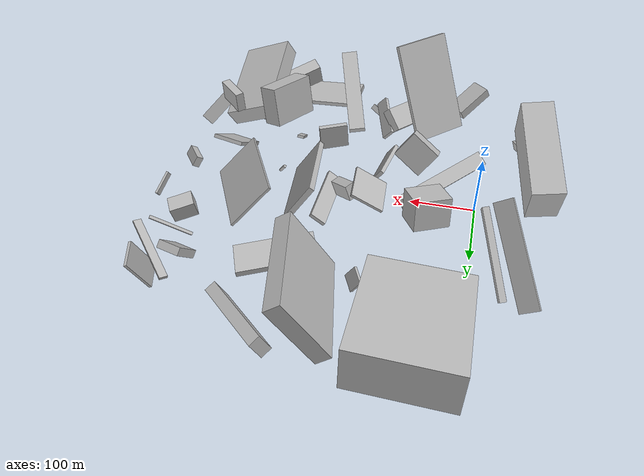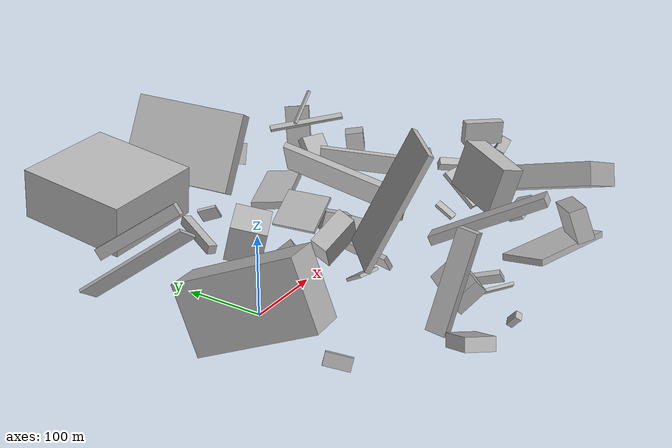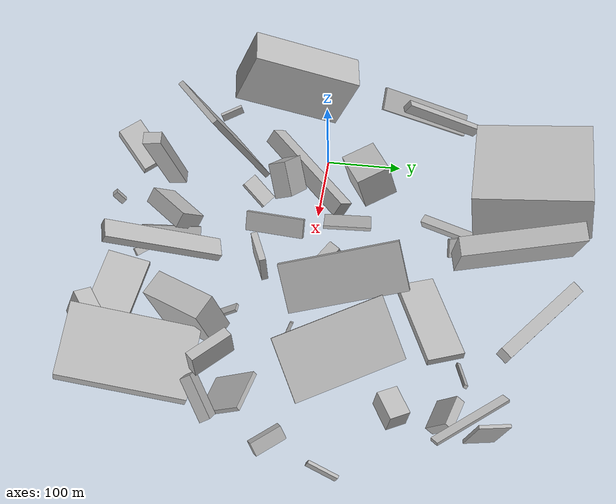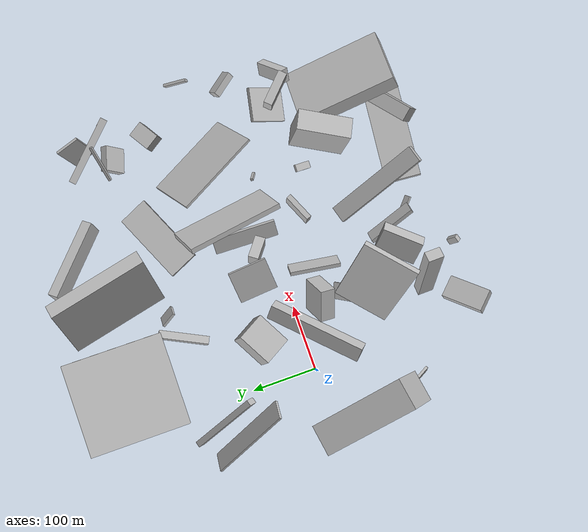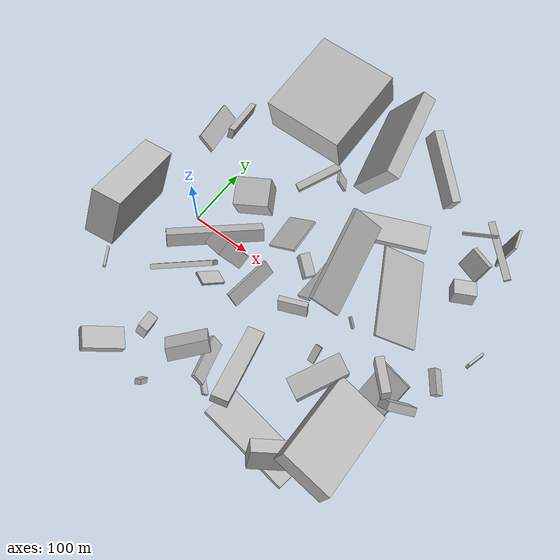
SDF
<sdf version="1.6">
 <world name="default">
  <scene>
   <sky><clouds><speed>12</speed></clouds></sky>
   <ambient>0.4 0.4 0.4 1</ambient>
   <background>0.7 0.7 0.7 1</background>
   <shadows>1</shadows>
  </scene>
  <gravity>0 0 -9.8066</gravity>
  <magnetic_field>6e-06 2.3e-05 -4.2e-05</magnetic_field>
  <physics default="0" name="default_physics" type="ode">
   <ode>
    <solver>
     <type>quick</type>
     <iters>10</iters>
     <sor>1.0</sor>
     <use_dynamic_moi_rescaling>0</use_dynamic_moi_rescaling>
    </solver>
    <constraints>
     <cfm>0</cfm>
     <erp>0.2</erp>
     <contact_max_correcting_vel>100</contact_max_correcting_vel>
     <contact_surface_layer>0.001</contact_surface_layer>
    </constraints>
   </ode>
   <max_step_size>0.004</max_step_size>
   <real_time_factor>1</real_time_factor>
   <real_time_update_rate>250</real_time_update_rate>
  </physics>
  <light name="sun" type="directional">
   <pose>0 0 10 0 0 0</pose>
   <diffuse>0.8 0.8 0.8 1</diffuse>
   <specular>0.2 0.2 0.2 1</specular>
   <attenuation>
    <range>1000</range>
    <constant>0.9</constant>
    <linear>0.01</linear>
    <quadratic>0.001</quadratic>
   </attenuation>
   <direction>-0.5 0.1 -0.9</direction>
  </light>
  <model name="building_1">
   <static>0</static>
   <pose>-60.25235133368727 -50.20936138154008 71.71416998078236 1.45549197673673 -0.401541866076691 -1.3689805716359864</pose>
   <link name="link">
    <gravity>0</gravity>
    <pose>0 0 24.0 0 0 0</pose>
    <collision name="collision"><geometry><box><size>150 85 48</size></box></geometry></collision>
    <visual name="visual">
     <cast_shadows>0</cast_shadows>
     <geometry><box><size>150 85 48</size></box></geometry>
     <material>
      <script>
       <uri>model://HANNAS_wall/materials/scripts</uri>
       <uri>model://HANNAS_wall/materials/textures</uri>
       <name>vrc/HANNAS_wall</name>
      </script>
     </material>
    </visual>
   </link>
  </model>
  <model name="building_2">
   <static>0</static>
   <pose>434.0972445987231 -177.85057770969897 52.88606769500816 1.1880320403641156 -0.2572028035636012 -1.511340583130116</pose>
   <link name="link">
    <gravity>0</gravity>
    <pose>0 0 42.5 0 0 0</pose>
    <collision name="collision"><geometry><box><size>150 30 85</size></box></geometry></collision>
    <visual name="visual">
     <cast_shadows>0</cast_shadows>
     <geometry><box><size>150 30 85</size></box></geometry>
     <material>
      <script>
       <uri>model://HANNAS_wall/materials/scripts</uri>
       <uri>model://HANNAS_wall/materials/textures</uri>
       <name>vrc/HANNAS_wall</name>
      </script>
     </material>
    </visual>
   </link>
  </model>
  <model name="building_3">
   <static>0</static>
   <pose>301.1779980425065 -230.11643713288035 19.112194760271382 0.16891549188088836 -0.12971441848914878 3.023324966232064</pose>
   <link name="link">
    <gravity>0</gravity>
    <pose>0 0 4.0 0 0 0</pose>
    <collision name="collision"><geometry><box><size>150 54 8</size></box></geometry></collision>
    <visual name="visual">
     <cast_shadows>0</cast_shadows>
     <geometry><box><size>150 54 8</size></box></geometry>
     <material>
      <script>
       <uri>model://HANNAS_wall/materials/scripts</uri>
       <uri>model://HANNAS_wall/materials/textures</uri>
       <name>vrc/HANNAS_wall</name>
      </script>
     </material>
    </visual>
   </link>
  </model>
  <model name="building_4">
   <static>0</static>
   <pose>111.36813093241996 -32.8849343449691 50.72258154397326 0.4543028214733065 -0.5648923138002895 -0.31093363963004533</pose>
   <link name="link">
    <gravity>0</gravity>
    <pose>0 0 22.5 0 0 0</pose>
    <collision name="collision"><geometry><box><size>50 23 45</size></box></geometry></collision>
    <visual name="visual">
     <cast_shadows>0</cast_shadows>
     <geometry><box><size>50 23 45</size></box></geometry>
     <material>
      <script>
       <uri>model://HANNAS_wall/materials/scripts</uri>
       <uri>model://HANNAS_wall/materials/textures</uri>
       <name>vrc/HANNAS_wall</name>
      </script>
     </material>
    </visual>
   </link>
  </model>
  <model name="building_5">
   <static>0</static>
   <pose>212.2674574630388 184.2484656451919 80.5213434235328 -1.4306352503838542 -1.0500172286552973 0.10232424264633498</pose>
   <link name="link">
    <gravity>0</gravity>
    <pose>0 0 75.0 0 0 0</pose>
    <collision name="collision"><geometry><box><size>106 23 150</size></box></geometry></collision>
    <visual name="visual">
     <cast_shadows>0</cast_shadows>
     <geometry><box><size>106 23 150</size></box></geometry>
     <material>
      <script>
       <uri>model://HANNAS_wall/materials/scripts</uri>
       <uri>model://HANNAS_wall/materials/textures</uri>
       <name>vrc/HANNAS_wall</name>
      </script>
     </material>
    </visual>
   </link>
  </model>
  <model name="building_6">
   <static>0</static>
   <pose>173.5736541697972 -197.5148070005549 8.0180633052213 1.4192571474985403 -0.7654240277411027 0.9660755953076232</pose>
   <link name="link">
    <gravity>0</gravity>
    <pose>0 0 19.0 0 0 0</pose>
    <collision name="collision"><geometry><box><size>4 10 38</size></box></geometry></collision>
    <visual name="visual">
     <cast_shadows>0</cast_shadows>
     <geometry><box><size>4 10 38</size></box></geometry>
     <material>
      <script>
       <uri>model://HANNAS_wall/materials/scripts</uri>
       <uri>model://HANNAS_wall/materials/textures</uri>
       <name>vrc/HANNAS_wall</name>
      </script>
     </material>
    </visual>
   </link>
  </model>
  <model name="building_7">
   <static>0</static>
   <pose>326.09803554454794 -113.85011745310095 47.62589438951939 0.23006087961401092 -0.139760161153987 1.0841853907213765</pose>
   <link name="link">
    <gravity>0</gravity>
    <pose>0 0 31.5 0 0 0</pose>
    <collision name="collision"><geometry><box><size>81 32 63</size></box></geometry></collision>
    <visual name="visual">
     <cast_shadows>0</cast_shadows>
     <geometry><box><size>81 32 63</size></box></geometry>
     <material>
      <script>
       <uri>model://HANNAS_wall/materials/scripts</uri>
       <uri>model://HANNAS_wall/materials/textures</uri>
       <name>vrc/HANNAS_wall</name>
      </script>
     </material>
    </visual>
   </link>
  </model>
  <model name="building_8">
   <static>0</static>
   <pose>47.98399160304412 -12.6843895468881 28.930466769528806 0.21380292222519115 -0.949830974680291 2.1759728856034832</pose>
   <link name="link">
    <gravity>0</gravity>
    <pose>0 0 11.5 0 0 0</pose>
    <collision name="collision"><geometry><box><size>20 150 23</size></box></geometry></collision>
    <visual name="visual">
     <cast_shadows>0</cast_shadows>
     <geometry><box><size>20 150 23</size></box></geometry>
     <material>
      <script>
       <uri>model://HANNAS_wall/materials/scripts</uri>
       <uri>model://HANNAS_wall/materials/textures</uri>
       <name>vrc/HANNAS_wall</name>
      </script>
     </material>
    </visual>
   </link>
  </model>
  <model name="building_9">
   <static>0</static>
   <pose>267.0039295312712 159.85796291650206 11.29077426091049 0.09414602967537448 -0.03667928146051552 -2.724255453443847</pose>
   <link name="link">
    <gravity>0</gravity>
    <pose>0 0 5.0 0 0 0</pose>
    <collision name="collision"><geometry><box><size>115 47 10</size></box></geometry></collision>
    <visual name="visual">
     <cast_shadows>0</cast_shadows>
     <geometry><box><size>115 47 10</size></box></geometry>
     <material>
      <script>
       <uri>model://HANNAS_wall/materials/scripts</uri>
       <uri>model://HANNAS_wall/materials/textures</uri>
       <name>vrc/HANNAS_wall</name>
      </script>
     </material>
    </visual>
   </link>
  </model>
  <model name="building_10">
   <static>0</static>
   <pose>408.797063193401 137.26208192375648 44.39815707394846 -0.8321508004424504 1.389799380436899 -1.8486092916430539</pose>
   <link name="link">
    <gravity>0</gravity>
    <pose>0 0 12.5 0 0 0</pose>
    <collision name="collision"><geometry><box><size>26 35 25</size></box></geometry></collision>
    <visual name="visual">
     <cast_shadows>0</cast_shadows>
     <geometry><box><size>26 35 25</size></box></geometry>
     <material>
      <script>
       <uri>model://HANNAS_wall/materials/scripts</uri>
       <uri>model://HANNAS_wall/materials/textures</uri>
       <name>vrc/HANNAS_wall</name>
      </script>
     </material>
    </visual>
   </link>
  </model>
  <model name="building_11">
   <static>0</static>
   <pose>425.3331881871866 252.02686717982115 34.39314090974973 1.051779652067661 -1.2325574570640483 0.7669210147089158</pose>
   <link name="link">
    <gravity>0</gravity>
    <pose>0 0 18.5 0 0 0</pose>
    <collision name="collision"><geometry><box><size>61 4 37</size></box></geometry></collision>
    <visual name="visual">
     <cast_shadows>0</cast_shadows>
     <geometry><box><size>61 4 37</size></box></geometry>
     <material>
      <script>
       <uri>model://HANNAS_wall/materials/scripts</uri>
       <uri>model://HANNAS_wall/materials/textures</uri>
       <name>vrc/HANNAS_wall</name>
      </script>
     </material>
    </visual>
   </link>
  </model>
  <model name="building_12">
   <static>0</static>
   <pose>264.62211525662815 -19.17401870293508 48.253189477022495 1.2692752325553798 0.6390135820166883 3.129280510843878</pose>
   <link name="link">
    <gravity>0</gravity>
    <pose>0 0 75.0 0 0 0</pose>
    <collision name="collision"><geometry><box><size>8 62 150</size></box></geometry></collision>
    <visual name="visual">
     <cast_shadows>0</cast_shadows>
     <geometry><box><size>8 62 150</size></box></geometry>
     <material>
      <script>
       <uri>model://HANNAS_wall/materials/scripts</uri>
       <uri>model://HANNAS_wall/materials/textures</uri>
       <name>vrc/HANNAS_wall</name>
      </script>
     </material>
    </visual>
   </link>
  </model>
  <model name="building_13">
   <static>0</static>
   <pose>128.4006439293614 208.0776029266575 13.957955126896053 2.1439211747090137 -1.324499835617328 -1.0220123324136363</pose>
   <link name="link">
    <gravity>0</gravity>
    <pose>0 0 38.5 0 0 0</pose>
    <collision name="collision"><geometry><box><size>12 12 77</size></box></geometry></collision>
    <visual name="visual">
     <cast_shadows>0</cast_shadows>
     <geometry><box><size>12 12 77</size></box></geometry>
     <material>
      <script>
       <uri>model://HANNAS_wall/materials/scripts</uri>
       <uri>model://HANNAS_wall/materials/textures</uri>
       <name>vrc/HANNAS_wall</name>
      </script>
     </material>
    </visual>
   </link>
  </model>
  <model name="building_14">
   <static>0</static>
   <pose>-59.34962735067617 126.8037397818394 54.004947693943514 0.7825148121884998 -0.6149332189189942 3.057386077477397</pose>
   <link name="link">
    <gravity>0</gravity>
    <pose>0 0 2.0 0 0 0</pose>
    <collision name="collision"><geometry><box><size>30 150 4</size></box></geometry></collision>
    <visual name="visual">
     <cast_shadows>0</cast_shadows>
     <geometry><box><size>30 150 4</size></box></geometry>
     <material>
      <script>
       <uri>model://HANNAS_wall/materials/scripts</uri>
       <uri>model://HANNAS_wall/materials/textures</uri>
       <name>vrc/HANNAS_wall</name>
      </script>
     </material>
    </visual>
   </link>
  </model>
  <model name="building_15">
   <static>0</static>
   <pose>410.17952918599156 -71.21752637139022 105.09610138390306 1.7565857033702699 -1.5251272263376188 -0.9526946140672307</pose>
   <link name="link">
    <gravity>0</gravity>
    <pose>0 0 6.5 0 0 0</pose>
    <collision name="collision"><geometry><box><size>30 52 13</size></box></geometry></collision>
    <visual name="visual">
     <cast_shadows>0</cast_shadows>
     <geometry><box><size>30 52 13</size></box></geometry>
     <material>
      <script>
       <uri>model://HANNAS_wall/materials/scripts</uri>
       <uri>model://HANNAS_wall/materials/textures</uri>
       <name>vrc/HANNAS_wall</name>
      </script>
     </material>
    </visual>
   </link>
  </model>
  <model name="building_16">
   <static>0</static>
   <pose>406.5981023929494 -60.42410430276972 22.144940723669006 -0.03218690842604898 -0.6180370106507622 1.3869227506890367</pose>
   <link name="link">
    <gravity>0</gravity>
    <pose>0 0 3.0 0 0 0</pose>
    <collision name="collision"><geometry><box><size>60 52 6</size></box></geometry></collision>
    <visual name="visual">
     <cast_shadows>0</cast_shadows>
     <geometry><box><size>60 52 6</size></box></geometry>
     <material>
      <script>
       <uri>model://HANNAS_wall/materials/scripts</uri>
       <uri>model://HANNAS_wall/materials/textures</uri>
       <name>vrc/HANNAS_wall</name>
      </script>
     </material>
    </visual>
   </link>
  </model>
  <model name="building_17">
   <static>0</static>
   <pose>117.02186728127737 -206.48218064077986 29.23629441644624 1.503152905711256 -0.8413070038830643 2.478820275684202</pose>
   <link name="link">
    <gravity>0</gravity>
    <pose>0 0 32.0 0 0 0</pose>
    <collision name="collision"><geometry><box><size>21 39 64</size></box></geometry></collision>
    <visual name="visual">
     <cast_shadows>0</cast_shadows>
     <geometry><box><size>21 39 64</size></box></geometry>
     <material>
      <script>
       <uri>model://HANNAS_wall/materials/scripts</uri>
       <uri>model://HANNAS_wall/materials/textures</uri>
       <name>vrc/HANNAS_wall</name>
      </script>
     </material>
    </visual>
   </link>
  </model>
  <model name="building_18">
   <static>0</static>
   <pose>70.050969016823 -91.85459297094643 70.10163776783475 0.016061829416721025 -0.4679636498496997 2.2887605476033688</pose>
   <link name="link">
    <gravity>0</gravity>
    <pose>0 0 75.0 0 0 0</pose>
    <collision name="collision"><geometry><box><size>7 83 150</size></box></geometry></collision>
    <visual name="visual">
     <cast_shadows>0</cast_shadows>
     <geometry><box><size>7 83 150</size></box></geometry>
     <material>
      <script>
       <uri>model://HANNAS_wall/materials/scripts</uri>
       <uri>model://HANNAS_wall/materials/textures</uri>
       <name>vrc/HANNAS_wall</name>
      </script>
     </material>
    </visual>
   </link>
  </model>
  <model name="building_19">
   <static>0</static>
   <pose>112.09749444744037 -265.0506946276114 18.38010394179487 1.161855005086686 -0.57935620434782 2.1363803137303385</pose>
   <link name="link">
    <gravity>0</gravity>
    <pose>0 0 5.0 0 0 0</pose>
    <collision name="collision"><geometry><box><size>8 17 10</size></box></geometry></collision>
    <visual name="visual">
     <cast_shadows>0</cast_shadows>
     <geometry><box><size>8 17 10</size></box></geometry>
     <material>
      <script>
       <uri>model://HANNAS_wall/materials/scripts</uri>
       <uri>model://HANNAS_wall/materials/textures</uri>
       <name>vrc/HANNAS_wall</name>
      </script>
     </material>
    </visual>
   </link>
  </model>
  <model name="building_20">
   <static>0</static>
   <pose>421.0863378646464 181.7876386645368 21.964025322352786 1.4758452338839858 -0.6980465145849039 -1.800748551852084</pose>
   <link name="link">
    <gravity>0</gravity>
    <pose>0 0 19.0 0 0 0</pose>
    <collision name="collision"><geometry><box><size>12 36 38</size></box></geometry></collision>
    <visual name="visual">
     <cast_shadows>0</cast_shadows>
     <geometry><box><size>12 36 38</size></box></geometry>
     <material>
      <script>
       <uri>model://HANNAS_wall/materials/scripts</uri>
       <uri>model://HANNAS_wall/materials/textures</uri>
       <name>vrc/HANNAS_wall</name>
      </script>
     </material>
    </visual>
   </link>
  </model>
  <model name="building_21">
   <static>0</static>
   <pose>484.2411434554542 58.36643519884878 15.843385848354586 1.644643042612164 -1.146332485783038 1.3035615896381778</pose>
   <link name="link">
    <gravity>0</gravity>
    <pose>0 0 2.0 0 0 0</pose>
    <collision name="collision"><geometry><box><size>9 38 4</size></box></geometry></collision>
    <visual name="visual">
     <cast_shadows>0</cast_shadows>
     <geometry><box><size>9 38 4</size></box></geometry>
     <material>
      <script>
       <uri>model://HANNAS_wall/materials/scripts</uri>
       <uri>model://HANNAS_wall/materials/textures</uri>
       <name>vrc/HANNAS_wall</name>
      </script>
     </material>
    </visual>
   </link>
  </model>
  <model name="building_22">
   <static>0</static>
   <pose>68.58777532797174 69.50159782849624 33.0755328161149 0.22343270004546803 -0.10216634831719408 0.49587752374297533</pose>
   <link name="link">
    <gravity>0</gravity>
    <pose>0 0 23.0 0 0 0</pose>
    <collision name="collision"><geometry><box><size>55 45 46</size></box></geometry></collision>
    <visual name="visual">
     <cast_shadows>0</cast_shadows>
     <geometry><box><size>55 45 46</size></box></geometry>
     <material>
      <script>
       <uri>model://HANNAS_wall/materials/scripts</uri>
       <uri>model://HANNAS_wall/materials/textures</uri>
       <name>vrc/HANNAS_wall</name>
      </script>
     </material>
    </visual>
   </link>
  </model>
  <model name="building_23">
   <static>0</static>
   <pose>-44.775754274796796 198.68329987821016 41.956391140740905 0.9650866915415641 0.1311231598269942 0.2828829374315059</pose>
   <link name="link">
    <gravity>0</gravity>
    <pose>0 0 61.0 0 0 0</pose>
    <collision name="collision"><geometry><box><size>9 15 122</size></box></geometry></collision>
    <visual name="visual">
     <cast_shadows>0</cast_shadows>
     <geometry><box><size>9 15 122</size></box></geometry>
     <material>
      <script>
       <uri>model://HANNAS_wall/materials/scripts</uri>
       <uri>model://HANNAS_wall/materials/textures</uri>
       <name>vrc/HANNAS_wall</name>
      </script>
     </material>
    </visual>
   </link>
  </model>
  <model name="building_24">
   <static>0</static>
   <pose>317.5775194231493 250.14510109543713 30.132274813813904 1.368987239584924 -0.3472905692562609 -2.224566251611315</pose>
   <link name="link">
    <gravity>0</gravity>
    <pose>0 0 61.5 0 0 0</pose>
    <collision name="collision"><geometry><box><size>16 30 123</size></box></geometry></collision>
    <visual name="visual">
     <cast_shadows>0</cast_shadows>
     <geometry><box><size>16 30 123</size></box></geometry>
     <material>
      <script>
       <uri>model://HANNAS_wall/materials/scripts</uri>
       <uri>model://HANNAS_wall/materials/textures</uri>
       <name>vrc/HANNAS_wall</name>
      </script>
     </material>
    </visual>
   </link>
  </model>
  <model name="building_25">
   <static>0</static>
   <pose>60.22850746239209 201.50900526555893 55.07238148622111 1.463332473479904 0.032709221303685254 3.133957850388805</pose>
   <link name="link">
    <gravity>0</gravity>
    <pose>0 0 75.0 0 0 0</pose>
    <collision name="collision"><geometry><box><size>138 67 150</size></box></geometry></collision>
    <visual name="visual">
     <cast_shadows>0</cast_shadows>
     <geometry><box><size>138 67 150</size></box></geometry>
     <material>
      <script>
       <uri>model://HANNAS_wall/materials/scripts</uri>
       <uri>model://HANNAS_wall/materials/textures</uri>
       <name>vrc/HANNAS_wall</name>
      </script>
     </material>
    </visual>
   </link>
  </model>
  <model name="building_26">
   <static>0</static>
   <pose>361.061552013575 -148.9622973063555 17.98509136218862 1.1275636246820666 -1.0569890396792965 1.9416417284243837</pose>
   <link name="link">
    <gravity>0</gravity>
    <pose>0 0 19.0 0 0 0</pose>
    <collision name="collision"><geometry><box><size>14 22 38</size></box></geometry></collision>
    <visual name="visual">
     <cast_shadows>0</cast_shadows>
     <geometry><box><size>14 22 38</size></box></geometry>
     <material>
      <script>
       <uri>model://HANNAS_wall/materials/scripts</uri>
       <uri>model://HANNAS_wall/materials/textures</uri>
       <name>vrc/HANNAS_wall</name>
      </script>
     </material>
    </visual>
   </link>
  </model>
  <model name="building_27">
   <static>0</static>
   <pose>363.0694517804364 -221.83246067485322 38.63247990762858 1.3414939148165779 -0.3020278926705953 -0.849020755949409</pose>
   <link name="link">
    <gravity>0</gravity>
    <pose>0 0 31.5 0 0 0</pose>
    <collision name="collision"><geometry><box><size>22 42 63</size></box></geometry></collision>
    <visual name="visual">
     <cast_shadows>0</cast_shadows>
     <geometry><box><size>22 42 63</size></box></geometry>
     <material>
      <script>
       <uri>model://HANNAS_wall/materials/scripts</uri>
       <uri>model://HANNAS_wall/materials/textures</uri>
       <name>vrc/HANNAS_wall</name>
      </script>
     </material>
    </visual>
   </link>
  </model>
  <model name="building_28">
   <static>0</static>
   <pose>174.37653355975615 -179.9169173977288 21.683139179545282 2.2433670301568673 -0.2716060195687165 -1.246279330394695</pose>
   <link name="link">
    <gravity>0</gravity>
    <pose>0 0 3.0 0 0 0</pose>
    <collision name="collision"><geometry><box><size>76 22 6</size></box></geometry></collision>
    <visual name="visual">
     <cast_shadows>0</cast_shadows>
     <geometry><box><size>76 22 6</size></box></geometry>
     <material>
      <script>
       <uri>model://HANNAS_wall/materials/scripts</uri>
       <uri>model://HANNAS_wall/materials/textures</uri>
       <name>vrc/HANNAS_wall</name>
      </script>
     </material>
    </visual>
   </link>
  </model>
  <model name="building_29">
   <static>0</static>
   <pose>443.25491543147047 -91.38473594066369 65.25794222625892 0.986631494307503 -0.6797580874768439 -2.459768188861636</pose>
   <link name="link">
    <gravity>0</gravity>
    <pose>0 0 6.5 0 0 0</pose>
    <collision name="collision"><geometry><box><size>53 21 13</size></box></geometry></collision>
    <visual name="visual">
     <cast_shadows>0</cast_shadows>
     <geometry><box><size>53 21 13</size></box></geometry>
     <material>
      <script>
       <uri>model://HANNAS_wall/materials/scripts</uri>
       <uri>model://HANNAS_wall/materials/textures</uri>
       <name>vrc/HANNAS_wall</name>
      </script>
     </material>
    </visual>
   </link>
  </model>
  <model name="building_30">
   <static>0</static>
   <pose>148.09408378661115 184.2750531308743 19.570257432721313 -1.0481472422676756 -0.29020492998184855 -1.038982133571834</pose>
   <link name="link">
    <gravity>0</gravity>
    <pose>0 0 2.0 0 0 0</pose>
    <collision name="collision"><geometry><box><size>25 24 4</size></box></geometry></collision>
    <visual name="visual">
     <cast_shadows>0</cast_shadows>
     <geometry><box><size>25 24 4</size></box></geometry>
     <material>
      <script>
       <uri>model://HANNAS_wall/materials/scripts</uri>
       <uri>model://HANNAS_wall/materials/textures</uri>
       <name>vrc/HANNAS_wall</name>
      </script>
     </material>
    </visual>
   </link>
  </model>
  <model name="building_31">
   <static>0</static>
   <pose>345.4051273334283 58.7013941042853 49.74577378420766 0.7049846488944191 -0.10754837012438344 2.0772129973262823</pose>
   <link name="link">
    <gravity>0</gravity>
    <pose>0 0 2.0 0 0 0</pose>
    <collision name="collision"><geometry><box><size>139 80 4</size></box></geometry></collision>
    <visual name="visual">
     <cast_shadows>0</cast_shadows>
     <geometry><box><size>139 80 4</size></box></geometry>
     <material>
      <script>
       <uri>model://HANNAS_wall/materials/scripts</uri>
       <uri>model://HANNAS_wall/materials/textures</uri>
       <name>vrc/HANNAS_wall</name>
      </script>
     </material>
    </visual>
   </link>
  </model>
  <model name="building_32">
   <static>0</static>
   <pose>213.6212833706 -61.36566309213805 68.62929038078057 -2.2746800900355697 -1.5217654656496429 -0.4593050242426129</pose>
   <link name="link">
    <gravity>0</gravity>
    <pose>0 0 22.0 0 0 0</pose>
    <collision name="collision"><geometry><box><size>39 8 44</size></box></geometry></collision>
    <visual name="visual">
     <cast_shadows>0</cast_shadows>
     <geometry><box><size>39 8 44</size></box></geometry>
     <material>
      <script>
       <uri>model://HANNAS_wall/materials/scripts</uri>
       <uri>model://HANNAS_wall/materials/textures</uri>
       <name>vrc/HANNAS_wall</name>
      </script>
     </material>
    </visual>
   </link>
  </model>
  <model name="building_33">
   <static>0</static>
   <pose>447.139862553129 7.474340858151739 24.891535156012658 1.7093458547716485 -0.6556764865277025 0.5911992739000388</pose>
   <link name="link">
    <gravity>0</gravity>
    <pose>0 0 19.5 0 0 0</pose>
    <collision name="collision"><geometry><box><size>11 17 39</size></box></geometry></collision>
    <visual name="visual">
     <cast_shadows>0</cast_shadows>
     <geometry><box><size>11 17 39</size></box></geometry>
     <material>
      <script>
       <uri>model://HANNAS_wall/materials/scripts</uri>
       <uri>model://HANNAS_wall/materials/textures</uri>
       <name>vrc/HANNAS_wall</name>
      </script>
     </material>
    </visual>
   </link>
  </model>
  <model name="building_34">
   <static>0</static>
   <pose>365.861951993776 196.11975289671955 72.06755630879769 0.9540748566702113 0.4393188692480178 1.4579814413440229</pose>
   <link name="link">
    <gravity>0</gravity>
    <pose>0 0 29.5 0 0 0</pose>
    <collision name="collision"><geometry><box><size>4 4 59</size></box></geometry></collision>
    <visual name="visual">
     <cast_shadows>0</cast_shadows>
     <geometry><box><size>4 4 59</size></box></geometry>
     <material>
      <script>
       <uri>model://HANNAS_wall/materials/scripts</uri>
       <uri>model://HANNAS_wall/materials/textures</uri>
       <name>vrc/HANNAS_wall</name>
      </script>
     </material>
    </visual>
   </link>
  </model>
  <model name="building_35">
   <static>0</static>
   <pose>194.92711937560983 26.433389270452736 19.742950092422817 0.32422411618553376 0.09520321407614928 0.952464030441835</pose>
   <link name="link">
    <gravity>0</gravity>
    <pose>0 0 12.5 0 0 0</pose>
    <collision name="collision"><geometry><box><size>16 36 25</size></box></geometry></collision>
    <visual name="visual">
     <cast_shadows>0</cast_shadows>
     <geometry><box><size>16 36 25</size></box></geometry>
     <material>
      <script>
       <uri>model://HANNAS_wall/materials/scripts</uri>
       <uri>model://HANNAS_wall/materials/textures</uri>
       <name>vrc/HANNAS_wall</name>
      </script>
     </material>
    </visual>
   </link>
  </model>
  <model name="building_36">
   <static>0</static>
   <pose>227.45195620613933 34.81912838652671 13.906634050189197 0.01114854222787662 0.6542728181772358 3.119875280795635</pose>
   <link name="link">
    <gravity>0</gravity>
    <pose>0 0 3.0 0 0 0</pose>
    <collision name="collision"><geometry><box><size>26 99 6</size></box></geometry></collision>
    <visual name="visual">
     <cast_shadows>0</cast_shadows>
     <geometry><box><size>26 99 6</size></box></geometry>
     <material>
      <script>
       <uri>model://HANNAS_wall/materials/scripts</uri>
       <uri>model://HANNAS_wall/materials/textures</uri>
       <name>vrc/HANNAS_wall</name>
      </script>
     </material>
    </visual>
   </link>
  </model>
  <model name="building_37">
   <static>0</static>
   <pose>103.92477703600065 -65.25825410892878 22.09190676180723 0.9972727325142258 -0.1596568696749307 -0.43795428007259585</pose>
   <link name="link">
    <gravity>0</gravity>
    <pose>0 0 19.5 0 0 0</pose>
    <collision name="collision"><geometry><box><size>25 4 39</size></box></geometry></collision>
    <visual name="visual">
     <cast_shadows>0</cast_shadows>
     <geometry><box><size>25 4 39</size></box></geometry>
     <material>
      <script>
       <uri>model://HANNAS_wall/materials/scripts</uri>
       <uri>model://HANNAS_wall/materials/textures</uri>
       <name>vrc/HANNAS_wall</name>
      </script>
     </material>
    </visual>
   </link>
  </model>
  <model name="building_38">
   <static>0</static>
   <pose>296.98168356286516 -93.53471911429838 28.02491504670738 -1.0116909270902743 -0.10771174641356301 -0.008097441568119272</pose>
   <link name="link">
    <gravity>0</gravity>
    <pose>0 0 13.5 0 0 0</pose>
    <collision name="collision"><geometry><box><size>11 4 27</size></box></geometry></collision>
    <visual name="visual">
     <cast_shadows>0</cast_shadows>
     <geometry><box><size>11 4 27</size></box></geometry>
     <material>
      <script>
       <uri>model://HANNAS_wall/materials/scripts</uri>
       <uri>model://HANNAS_wall/materials/textures</uri>
       <name>vrc/HANNAS_wall</name>
      </script>
     </material>
    </visual>
   </link>
  </model>
  <model name="building_39">
   <static>0</static>
   <pose>82.57932677914714 -215.38622725325482 63.734863454401726 1.4364861629863086 -0.33774834893205086 -3.076874461870884</pose>
   <link name="link">
    <gravity>0</gravity>
    <pose>0 0 12.0 0 0 0</pose>
    <collision name="collision"><geometry><box><size>16 121 24</size></box></geometry></collision>
    <visual name="visual">
     <cast_shadows>0</cast_shadows>
     <geometry><box><size>16 121 24</size></box></geometry>
     <material>
      <script>
       <uri>model://HANNAS_wall/materials/scripts</uri>
       <uri>model://HANNAS_wall/materials/textures</uri>
       <name>vrc/HANNAS_wall</name>
      </script>
     </material>
    </visual>
   </link>
  </model>
  <model name="building_40">
   <static>0</static>
   <pose>155.64571613227946 45.7979497900931 58.37332077085739 3.1066247268695912 -0.5650823247040856 0.09673679550937353</pose>
   <link name="link">
    <gravity>0</gravity>
    <pose>0 0 2.0 0 0 0</pose>
    <collision name="collision"><geometry><box><size>53 59 4</size></box></geometry></collision>
    <visual name="visual">
     <cast_shadows>0</cast_shadows>
     <geometry><box><size>53 59 4</size></box></geometry>
     <material>
      <script>
       <uri>model://HANNAS_wall/materials/scripts</uri>
       <uri>model://HANNAS_wall/materials/textures</uri>
       <name>vrc/HANNAS_wall</name>
      </script>
     </material>
    </visual>
   </link>
  </model>
  <model name="building_41">
   <static>0</static>
   <pose>313.267311981474 -9.900910902542206 18.055592656493996 -0.618160501391052 0.3078833188302266 1.4192636452714684</pose>
   <link name="link">
    <gravity>0</gravity>
    <pose>0 0 10.0 0 0 0</pose>
    <collision name="collision"><geometry><box><size>4 4 20</size></box></geometry></collision>
    <visual name="visual">
     <cast_shadows>0</cast_shadows>
     <geometry><box><size>4 4 20</size></box></geometry>
     <material>
      <script>
       <uri>model://HANNAS_wall/materials/scripts</uri>
       <uri>model://HANNAS_wall/materials/textures</uri>
       <name>vrc/HANNAS_wall</name>
      </script>
     </material>
    </visual>
   </link>
  </model>
  <model name="building_42">
   <static>0</static>
   <pose>155.79542688979512 -49.206991354646924 20.14289337487965 0.6028911123140772 0.07336855657963248 -1.7147813976663029</pose>
   <link name="link">
    <gravity>0</gravity>
    <pose>0 0 12.5 0 0 0</pose>
    <collision name="collision"><geometry><box><size>77 6 25</size></box></geometry></collision>
    <visual name="visual">
     <cast_shadows>0</cast_shadows>
     <geometry><box><size>77 6 25</size></box></geometry>
     <material>
      <script>
       <uri>model://HANNAS_wall/materials/scripts</uri>
       <uri>model://HANNAS_wall/materials/textures</uri>
       <name>vrc/HANNAS_wall</name>
      </script>
     </material>
    </visual>
   </link>
  </model>
  <model name="building_43">
   <static>0</static>
   <pose>208.12992018650013 -109.55985451714136 40.673220414528586 1.1065142116086262 0.08689804649320591 0.2738139104385628</pose>
   <link name="link">
    <gravity>0</gravity>
    <pose>0 0 75.0 0 0 0</pose>
    <collision name="collision"><geometry><box><size>26 12 150</size></box></geometry></collision>
    <visual name="visual">
     <cast_shadows>0</cast_shadows>
     <geometry><box><size>26 12 150</size></box></geometry>
     <material>
      <script>
       <uri>model://HANNAS_wall/materials/scripts</uri>
       <uri>model://HANNAS_wall/materials/textures</uri>
       <name>vrc/HANNAS_wall</name>
      </script>
     </material>
    </visual>
   </link>
  </model>
  <model name="building_44">
   <static>0</static>
   <pose>43.161598725805185 -263.8551982504199 29.323818421048827 1.4825082495529485 -0.44513861817756695 -2.3288632047161144</pose>
   <link name="link">
    <gravity>0</gravity>
    <pose>0 0 17.0 0 0 0</pose>
    <collision name="collision"><geometry><box><size>64 16 34</size></box></geometry></collision>
    <visual name="visual">
     <cast_shadows>0</cast_shadows>
     <geometry><box><size>64 16 34</size></box></geometry>
     <material>
      <script>
       <uri>model://HANNAS_wall/materials/scripts</uri>
       <uri>model://HANNAS_wall/materials/textures</uri>
       <name>vrc/HANNAS_wall</name>
      </script>
     </material>
    </visual>
   </link>
  </model>
  <model name="building_45">
   <static>0</static>
   <pose>418.9503518106365 211.54015842188096 49.66462752491602 -1.339598108453393 -0.1189019016827214 -0.8083484447979656</pose>
   <link name="link">
    <gravity>0</gravity>
    <pose>0 0 5.5 0 0 0</pose>
    <collision name="collision"><geometry><box><size>107 4 11</size></box></geometry></collision>
    <visual name="visual">
     <cast_shadows>0</cast_shadows>
     <geometry><box><size>107 4 11</size></box></geometry>
     <material>
      <script>
       <uri>model://HANNAS_wall/materials/scripts</uri>
       <uri>model://HANNAS_wall/materials/textures</uri>
       <name>vrc/HANNAS_wall</name>
      </script>
     </material>
    </visual>
   </link>
  </model>
  <model name="building_46">
   <static>0</static>
   <pose>-54.17833339344325 -158.29033731739668 15.530914809290362 1.3366190449687545 -0.23547929419615649 -2.602446760100828</pose>
   <link name="link">
    <gravity>0</gravity>
    <pose>0 0 15.5 0 0 0</pose>
    <collision name="collision"><geometry><box><size>4 16 31</size></box></geometry></collision>
    <visual name="visual">
     <cast_shadows>0</cast_shadows>
     <geometry><box><size>4 16 31</size></box></geometry>
     <material>
      <script>
       <uri>model://HANNAS_wall/materials/scripts</uri>
       <uri>model://HANNAS_wall/materials/textures</uri>
       <name>vrc/HANNAS_wall</name>
      </script>
     </material>
    </visual>
   </link>
  </model>
 </world>
</sdf>
